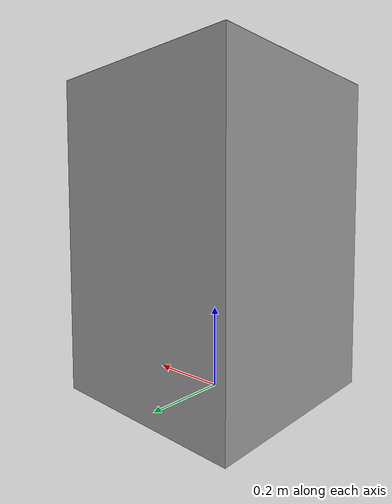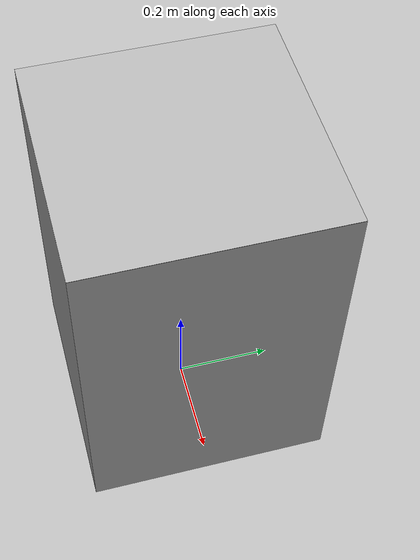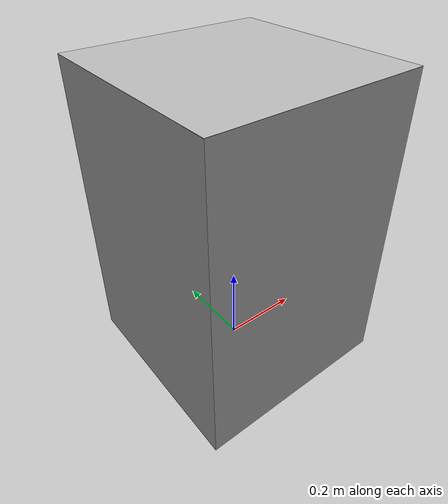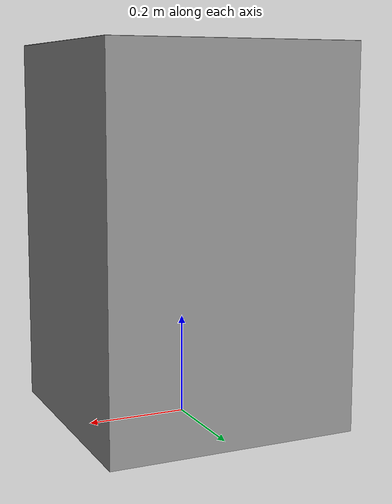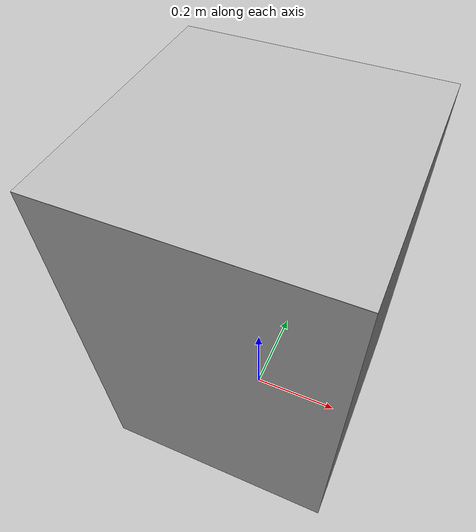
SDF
<?xml version="1.0"?>
<sdf version="1.5">
    <model name="box-75">
        <static>true</static>
        <link name="box-75_link">
            <pose>0.0 0.0 0.375 0 0 0</pose>
            <visual name="visual_box-75">
                <cast_shadows>false</cast_shadows>
                <geometry>
                    <box>
                        <size>0.5 0.5 0.75</size>
                    </box>
                </geometry>
                <material>
                    <script>
                        <uri>file://media/materials/scripts/gazebo.material</uri>
                        <name>Gazebo/Grey</name>
                    </script>
                </material>
            </visual>

            <collision name="collision_box-75">
                <geometry>
                    <box>
                        <size>0.5 0.5 0.75</size>
                    </box>
                </geometry>
            </collision>
        </link>

        <link name="box-75-clever_link">
            <pose>0.0 0.0 0.75 0 0 0</pose>
            <visual name="visual_box-75-clever">
                <cast_shadows>false</cast_shadows>
                <geometry>
                    <box>
                        <size>0.5 0.5 1e-3</size>
                    </box>
                </geometry>
                <material>
                    <script>
                        <uri>model://box-75/materials/scripts</uri>
                        <uri>model://box-75/materials/textures</uri>
                        <name>box/qr-code</name>
                    </script>
                </material>
            </visual>
        </link>
    </model>
</sdf>
